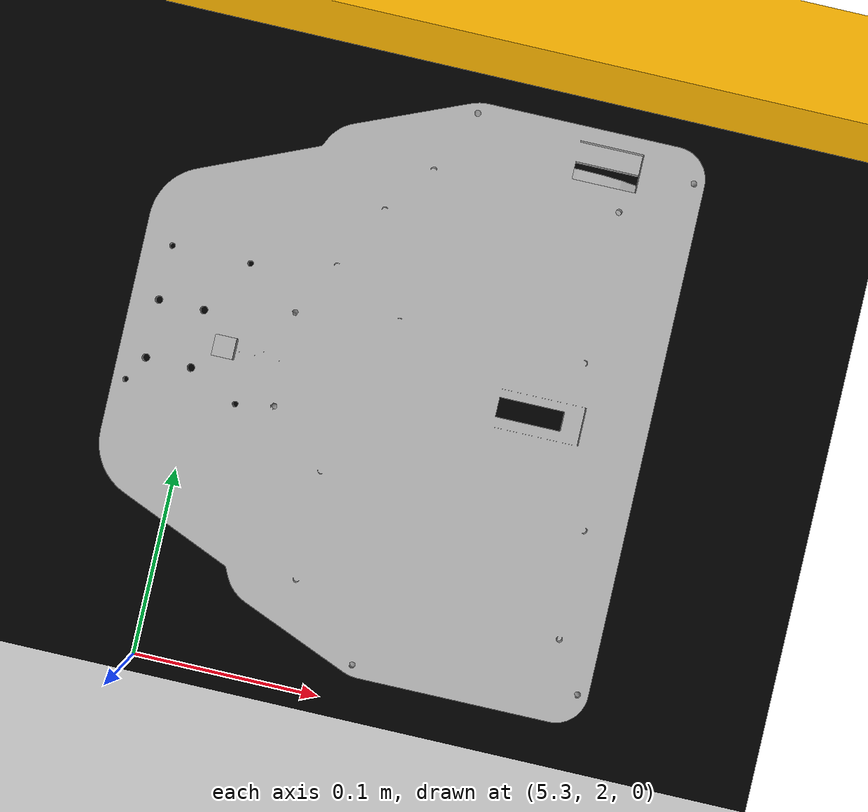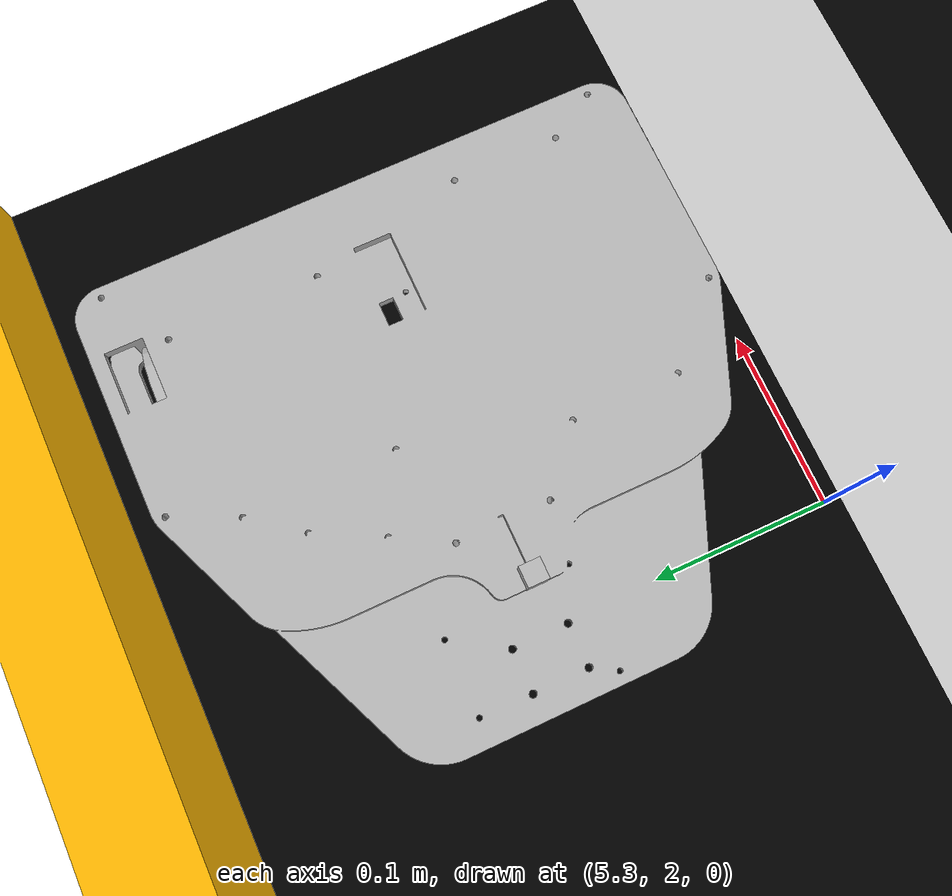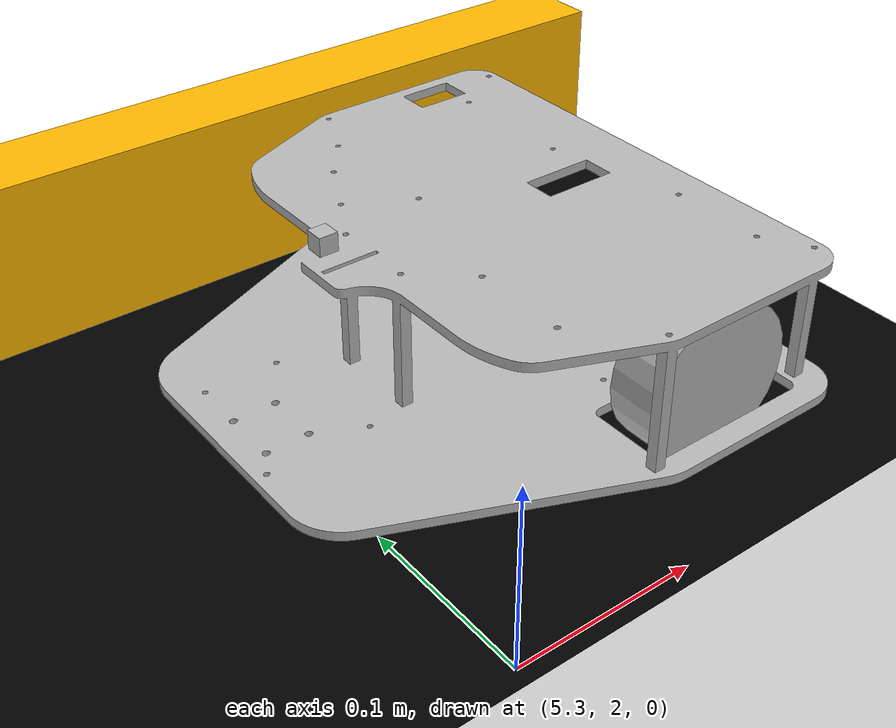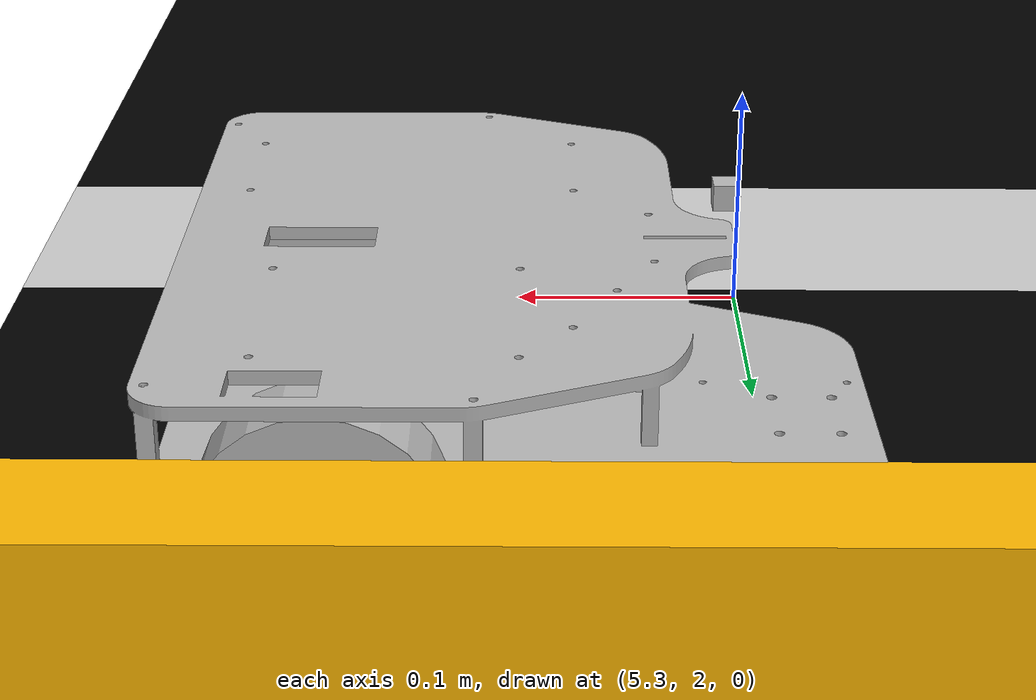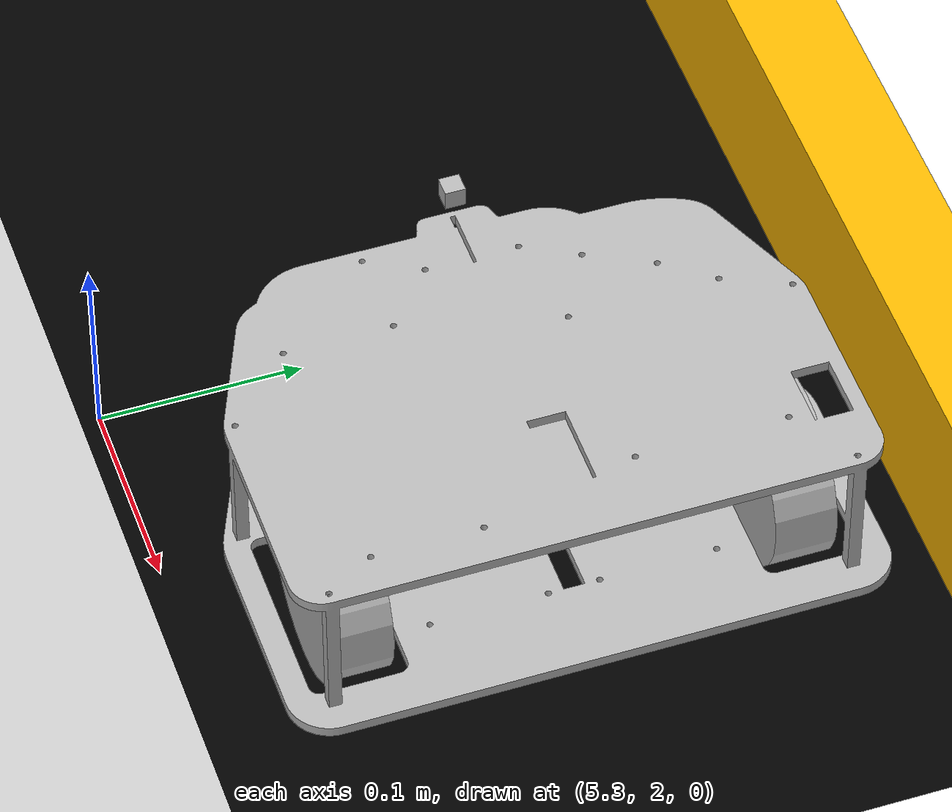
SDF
<sdf version="1.7">
 <world name="default">
  <gravity>0 0 -9.8</gravity>
  <magnetic_field>6e-06 2.3e-05 -4.2e-05</magnetic_field>
  <atmosphere type="adiabatic"/>
  <physics type="ode">
   <max_step_size>0.001</max_step_size>
   <real_time_factor>1</real_time_factor>
   <real_time_update_rate>1000</real_time_update_rate>
  </physics>
  <scene><ambient>0.4 0.4 0.4 1</ambient><background>0.7 0.7 0.7 1</background><shadows>0</shadows></scene>
  <spherical_coordinates>
   <surface_model>EARTH_WGS84</surface_model>
   <latitude_deg>0</latitude_deg>
   <longitude_deg>0</longitude_deg>
   <elevation>0</elevation>
   <heading_deg>0</heading_deg>
  </spherical_coordinates>
  <include><uri>model://sun</uri></include>
  <model name="ttfestcar">
   <pose>5.46549 2.16962 2.4e-05 6.4e-05 -0 -1.56803</pose>
   <plugin name="diff_drive" filename="libgazebo_ros_diff_drive.so">
    <left_joint>left_wheel_joint</left_joint>
    <right_joint>right_wheel_joint</right_joint>
    <wheel_separation>0.182</wheel_separation>
    <wheel_diameter>0.088</wheel_diameter>
    <command_topic>cmd_vel</command_topic>
    <publish_odom>true</publish_odom>
    <publish_odom_tf>true</publish_odom_tf>
    <publish_wheel_tf>false</publish_wheel_tf>
    <odometry_topic>odom</odometry_topic>
   </plugin>
   <link name="chassis">
    <pose>0 0 0.022 0 0 0</pose>
    <inertial>
     <mass>10</mass>
     <inertia>
      <ixx>0.06793646</ixx>
      <ixy>0</ixy>
      <ixz>0</ixz>
      <iyy>0.13221448</iyy>
      <iyz>0</iyz>
      <izz>0.07494388</izz>
     </inertia>
    </inertial>
    <inertial><mass>10</mass><auto>true</auto></inertial>
    <visual name="visual">
     <geometry><mesh><uri>model://ttfestcar/meshes/rascar.dae</uri></mesh></geometry>
    </visual>
    <collision name="collision">
     <geometry><mesh><uri>model://ttfestcar/meshes/rascar.dae</uri></mesh></geometry>
    </collision>
   </link>
   <link name="left_wheel">
    <pose relative_to="chassis">-0.106 0 0.022 0 1.57 0</pose>
    <inertial>
     <mass>10</mass>
     <inertia><ixx>0.0016</ixx><ixy>0</ixy><ixz>0</ixz><iyy>0.0016</iyy><iyz>0</iyz><izz>0.00088</izz></inertia>
    </inertial>
    <visual name="visual">
     <geometry><cylinder><radius>0.044</radius><length>0.03</length></cylinder></geometry>
    </visual>
    <collision name="collision">
     <geometry><cylinder><radius>0.044</radius><length>0.03</length></cylinder></geometry>
    </collision>
   </link>
   <link name="right_wheel">
    <pose relative_to="chassis">0.106 0 0.022 0 1.57 0</pose>
    <inertial>
     <mass>10</mass>
     <inertia><ixx>0.0016</ixx><ixy>0</ixy><ixz>0</ixz><iyy>0.0016</iyy><iyz>0</iyz><izz>0.00088</izz></inertia>
    </inertial>
    <visual name="visual">
     <geometry><cylinder><radius>0.044</radius><length>0.03</length></cylinder></geometry>
    </visual>
    <collision name="collision">
     <geometry><cylinder><radius>0.044</radius><length>0.03</length></cylinder></geometry>
    </collision>
   </link>
   <link name="caster_wheel">
    <pose relative_to="chassis">0 -0.1765 -0.011 0 0 0</pose>
    <inertial>
     <mass>5</mass>
     <inertia><ixx>0.000242</ixx><iyy>0.000242</iyy><izz>0.000242</izz></inertia>
    </inertial>
    <visual name="visual"><geometry><sphere><radius>0.011</radius></sphere></geometry></visual>
    <collision name="collision"><geometry><sphere><radius>0.011</radius></sphere></geometry></collision>
   </link>
   <joint name="left_wheel_joint" type="revolute">
    <parent>chassis</parent>
    <child>left_wheel</child>
    <axis>
     <xyz expressed_in="__model__">1 0 0</xyz>
     <limit><lower>-1.79769e+308</lower><upper>1.79769e+308</upper></limit>
     <dynamics><friction>12.031606150200002</friction></dynamics>
    </axis>
   </joint>
   <joint name="right_wheel_joint" type="revolute">
    <parent>chassis</parent>
    <child>right_wheel</child>
    <axis>
     <xyz expressed_in="__model__">1 0 0</xyz>
     <limit><lower>-1.79769e+308</lower><upper>1.79769e+308</upper></limit>
     <dynamics><friction>12.031606150200002</friction></dynamics>
    </axis>
   </joint>
   <joint name="caster_wheel_joint" type="ball">
    <parent>chassis</parent>
    <child>caster_wheel</child>
    <dynamics><friction>12.031606150200002</friction></dynamics>
   </joint>
   <link name="camera_link">
    <pose relative_to="chassis">0 -0.144 0.0975 0 0 -1.57</pose>
    <inertial>
     <mass>0.1</mass>
     <inertia><ixx>0.000166667</ixx><iyy>0.000166667</iyy><izz>0.000166667</izz></inertia>
    </inertial>
    <visual name="visual"><geometry><box><size>0.01 0.01 0.01</size></box></geometry></visual>
    <collision name="collision"><geometry><box><size>0.1 0.1 0.1</size></box></geometry></collision>
    <sensor name="camera" type="camera">
     <camera>
      <horizontal_fov>1.0855947947</horizontal_fov>
      <image><width>829</width><height>621</height></image>
      <clip><near>0.1</near><far>100</far></clip>
     </camera>
     <plugin name="camera_controller" filename="libgazebo_ros_camera.so">
      <always_on>1</always_on>
      <update_rate>30</update_rate>
      <cameraName>/camera</cameraName>
      <imageTopicName>image_raw</imageTopicName>
      <cameraInfoTopicName>camera_info</cameraInfoTopicName>
      <frameName>camera</frameName>
     </plugin>
    </sensor>
   </link>
   <joint name="camera_joint" type="fixed">
    <pose relative_to="camera_link"/>
    <parent>chassis</parent>
    <child>camera_link</child>
   </joint>
   <link name="hokuyo_link">
    <sensor name="head_hokuyo_sensor" type="ray">
     <always_on>true</always_on>
     <visualize>false</visualize>
     <pose relative_to="chassis">0 -0.155 0.054 0 0 0</pose>
     <update_rate>100</update_rate>
     <ray>
      <scan>
       <horizontal>
        <samples>2000</samples>
        <resolution>0.2</resolution>
        <min_angle>-3.14</min_angle>
        <max_angle>3.14</max_angle>
       </horizontal>
      </scan>
      <range><min>0.15</min><max>6.0</max><resolution>0.5</resolution></range>
     </ray>
     <plugin name="gazebo_ros_head_hokuyo_controller" filename="libgazebo_ros_ray_sensor.so">
      <ros><namespace>/lidar</namespace><remapping>~/out:=data</remapping></ros>
      <output_type>sensor_msgs/LaserScan</output_type>
      <frameName>hokuyo_link</frameName>
     </plugin>
    </sensor>
   </link>
   <joint name="hokuyo_joint" type="fixed"><parent>chassis</parent><child>hokuyo_link</child></joint>
  </model>
  <light name="user_directional_light_0" type="directional">
   <pose>1.00186 -0.958533 1 0 -0 0</pose>
   <diffuse>0.5 0.5 0.5 1</diffuse>
   <specular>0.1 0.1 0.1 1</specular>
   <direction>0.1 0.1 -0.9</direction>
   <attenuation>
    <range>20</range>
    <constant>0.5</constant>
    <linear>0.01</linear>
    <quadratic>0.001</quadratic>
   </attenuation>
  </light>
  <light name="user_directional_light_1" type="directional">
   <pose>-0.824597 -1.29851 1 0 -0 0</pose>
   <diffuse>0.5 0.5 0.5 1</diffuse>
   <specular>0.1 0.1 0.1 1</specular>
   <direction>0.1 0.1 -0.9</direction>
   <attenuation>
    <range>20</range>
    <constant>0.5</constant>
    <linear>0.01</linear>
    <quadratic>0.001</quadratic>
   </attenuation>
  </light>
  <light name="user_directional_light_2" type="directional">
   <pose>-0.482094 -1.05082 1 0 -0 0</pose>
   <diffuse>0.5 0.5 0.5 1</diffuse>
   <specular>0.1 0.1 0.1 1</specular>
   <direction>0.1 0.1 -0.9</direction>
   <attenuation>
    <range>20</range>
    <constant>0.5</constant>
    <linear>0.01</linear>
    <quadratic>0.001</quadratic>
   </attenuation>
  </light>
  <light name="user_directional_light_3" type="directional">
   <pose>-0.490253 -1.08654 1 0 -0 0</pose>
   <diffuse>0.5 0.5 0.5 1</diffuse>
   <specular>0.1 0.1 0.1 1</specular>
   <direction>0.1 0.1 -0.9</direction>
   <attenuation>
    <range>20</range>
    <constant>0.5</constant>
    <linear>0.01</linear>
    <quadratic>0.001</quadratic>
   </attenuation>
  </light>
  <model name="TtfestRoad">
   <static>1</static>
   <link name="link">
    <collision name="collision">
     <geometry><mesh><uri>model://ttfestroad/meshes/road.dae</uri><scale>1 1 1</scale></mesh></geometry>
    </collision>
    <visual name="visual">
     <geometry><mesh><uri>model://ttfestroad/meshes/road.dae</uri><scale>1 1 1</scale></mesh></geometry>
    </visual>
   </link>
   <pose>1.02256 -2.60892 0 0 -0 0</pose>
  </model>
 </world>
</sdf>
